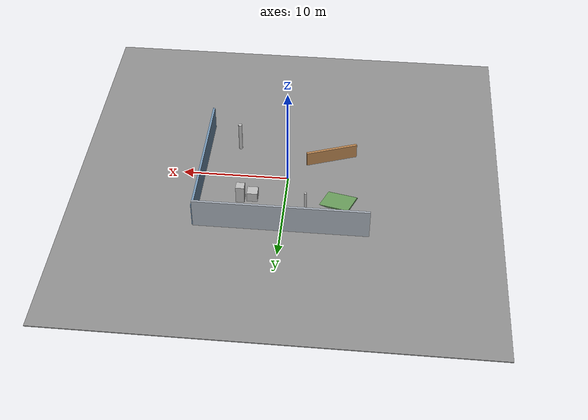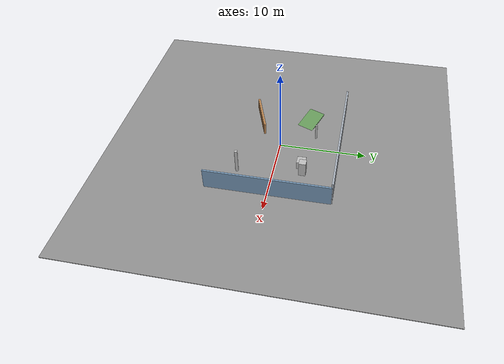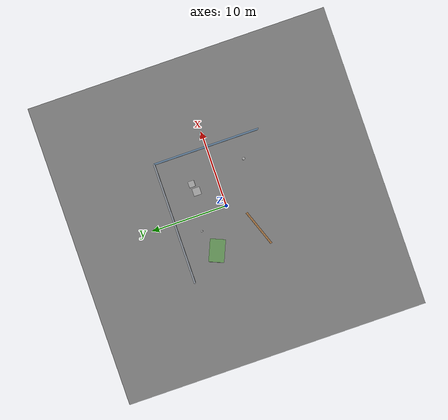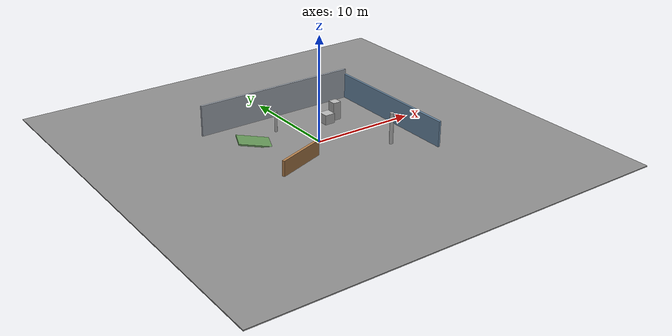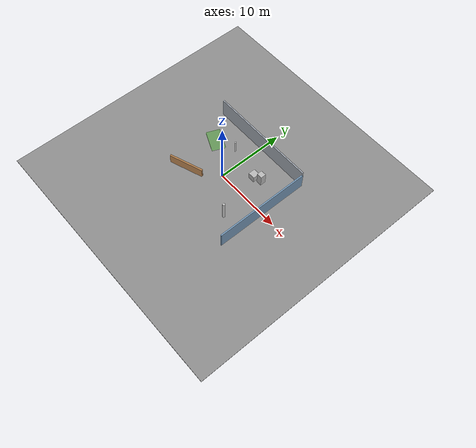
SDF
<?xml version="1.0"?>
<sdf version="1.8">
  <world name="a2_localization">
    <physics name="1ms" type="ode">
      <max_step_size>0.001</max_step_size>
      <real_time_factor>1.0</real_time_factor>
    </physics>

    <plugin filename="ignition-gazebo-physics-system"
            name="ignition::gazebo::systems::Physics"/>
    <plugin filename="ignition-gazebo-user-commands-system"
            name="ignition::gazebo::systems::UserCommands"/>
    <plugin filename="ignition-gazebo-scene-broadcaster-system"
            name="ignition::gazebo::systems::SceneBroadcaster"/>
    <plugin filename="ignition-gazebo-sensors-system"
            name="ignition::gazebo::systems::Sensors">
      <render_engine>ogre2</render_engine>
    </plugin>
    <plugin filename="ignition-gazebo-imu-system"
            name="ignition::gazebo::systems::Imu"/>

    <!-- Dynamic locomotion mode: the feet support the body against gravity. -->
    <gravity>0 0 -9.80665</gravity>
    <magnetic_field>5.64e-6 22.9e-6 -42.8e-6</magnetic_field>
    <atmosphere type="adiabatic"/>

    <light type="directional" name="sun">
      <cast_shadows>true</cast_shadows>
      <pose>0 0 10 0 0 0</pose>
      <diffuse>0.8 0.8 0.8 1</diffuse>
      <specular>0.2 0.2 0.2 1</specular>
      <direction>-0.4 0.2 -0.9</direction>
    </light>

    <model name="ground_plane">
      <static>true</static>
      <link name="link">
        <collision name="collision">
          <surface>
            <friction><ode><mu>0.8</mu><mu2>0.8</mu2></ode></friction>
            <contact><ode><kp>1000000</kp><kd>100</kd></ode></contact>
          </surface>
          <geometry><box><size>40 40 0.1</size></box></geometry>
        </collision>
        <visual name="visual">
          <geometry><box><size>40 40 0.1</size></box></geometry>
          <material>
            <ambient>0.35 0.35 0.35 1</ambient>
            <diffuse>0.55 0.55 0.55 1</diffuse>
          </material>
        </visual>
      </link>
    </model>

    <model name="north_wall">
      <static>true</static><pose>0 7 1.5 0 0 0</pose>
      <link name="link">
        <collision name="collision"><geometry><box><size>16 0.2 3</size></box></geometry></collision>
        <visual name="visual"><geometry><box><size>16 0.2 3</size></box></geometry>
          <material><ambient>0.65 0.68 0.72 1</ambient><diffuse>0.65 0.68 0.72 1</diffuse></material>
        </visual>
      </link>
    </model>
    <model name="east_wall">
      <static>true</static><pose>8 0 1.25 0 0 0</pose>
      <link name="link">
        <collision name="collision"><geometry><box><size>0.2 14 2.5</size></box></geometry></collision>
        <visual name="visual"><geometry><box><size>0.2 14 2.5</size></box></geometry>
          <material><ambient>0.45 0.58 0.70 1</ambient><diffuse>0.45 0.58 0.70 1</diffuse></material>
        </visual>
      </link>
    </model>
    <model name="short_wall">
      <static>true</static><pose>-4 -3 0.75 0 0 0.35</pose>
      <link name="link">
        <collision name="collision"><geometry><box><size>5 0.25 1.5</size></box></geometry></collision>
        <visual name="visual"><geometry><box><size>5 0.25 1.5</size></box></geometry>
          <material><ambient>0.7 0.5 0.3 1</ambient><diffuse>0.7 0.5 0.3 1</diffuse></material>
        </visual>
      </link>
    </model>

    <model name="box_cluster">
      <static>true</static><pose>3 3 0 0 0 0</pose>
      <link name="link">
        <collision name="c1"><pose>0 0 0.5 0 0 0</pose><geometry><box><size>1 1 1</size></box></geometry></collision>
        <visual name="v1"><pose>0 0 0.5 0 0 0</pose><geometry><box><size>1 1 1</size></box></geometry></visual>
        <collision name="c2"><pose>1.1 0.3 0.9 0 0 0</pose><geometry><box><size>0.8 0.8 1.8</size></box></geometry></collision>
        <visual name="v2"><pose>1.1 0.3 0.9 0 0 0</pose><geometry><box><size>0.8 0.8 1.8</size></box></geometry></visual>
      </link>
    </model>

    <model name="pole_1">
      <static>true</static><pose>-2 4 1 0 0 0</pose>
      <link name="link"><collision name="collision"><geometry><cylinder><radius>0.12</radius><length>2</length></cylinder></geometry></collision>
        <visual name="visual"><geometry><cylinder><radius>0.12</radius><length>2</length></cylinder></geometry></visual></link>
    </model>
    <model name="pole_2">
      <static>true</static><pose>5 -4 1.5 0 0 0</pose>
      <link name="link"><collision name="collision"><geometry><cylinder><radius>0.18</radius><length>3</length></cylinder></geometry></collision>
        <visual name="visual"><geometry><cylinder><radius>0.18</radius><length>3</length></cylinder></geometry></visual></link>
    </model>

    <model name="ramp">
      <!-- Low edge of the 10.3 degree top face is flush with floor z=0.05. -->
      <static>true</static><pose>-5 3 0.2448 0 0.18 -0.4</pose>
      <link name="link">
        <collision name="collision"><geometry><box><size>3 2 0.15</size></box></geometry></collision>
        <visual name="visual"><geometry><box><size>3 2 0.15</size></box></geometry>
          <material><ambient>0.4 0.6 0.35 1</ambient><diffuse>0.4 0.6 0.35 1</diffuse></material>
        </visual>
      </link>
    </model>
  </world>
</sdf>
